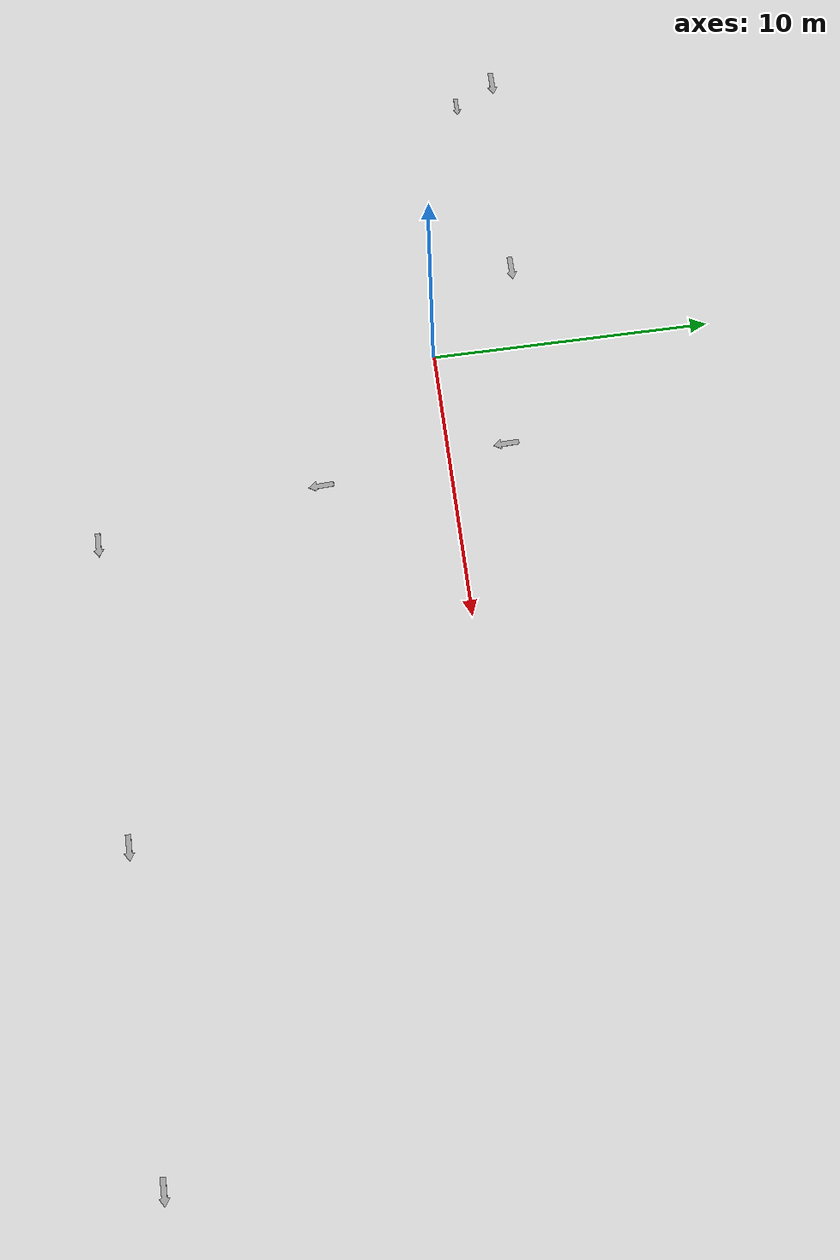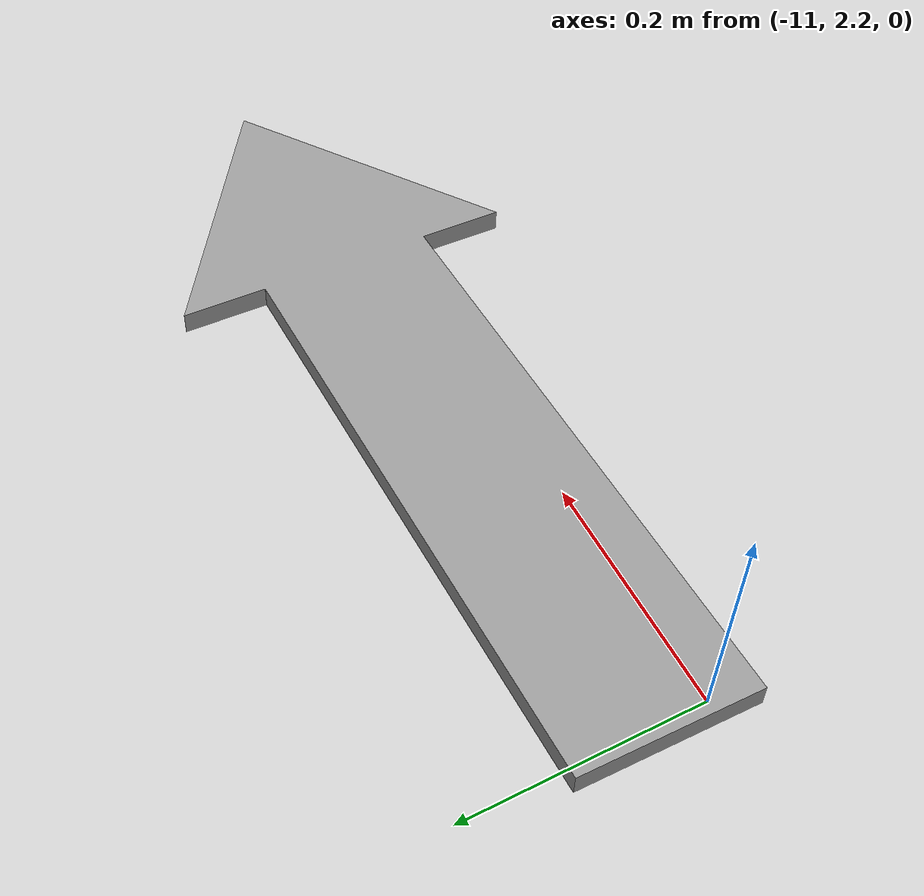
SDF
<sdf version="1.7">
 <world name="default">
  <light name="sun" type="directional">
   <pose>0 0 10 0 -0 0</pose>
   <diffuse>0.8 0.8 0.8 1</diffuse>
   <specular>0.2 0.2 0.2 1</specular>
   <attenuation>
    <range>1000</range>
    <constant>0.9</constant>
    <linear>0.01</linear>
    <quadratic>0.001</quadratic>
   </attenuation>
   <direction>-0.5 0.1 -0.9</direction>
   <spot><inner_angle>0</inner_angle><outer_angle>0</outer_angle><falloff>0</falloff></spot>
  </light>
  <model name="ground_plane">
   <static>1</static>
   <link name="link">
    <collision name="collision">
     <geometry><plane><normal>0 0 1</normal><size>100 100</size></plane></geometry>
     <surface>
      <contact><collide_bitmask>65535</collide_bitmask></contact>
      <friction><ode><mu>100</mu><mu2>50</mu2></ode></friction>
     </surface>
    </collision>
    <visual name="visual">
     <cast_shadows>0</cast_shadows>
     <geometry><plane><normal>0 0 1</normal><size>100 100</size></plane></geometry>
     <material>
      <script><uri>file://media/materials/scripts/gazebo.material</uri><name>Gazebo/Grey</name></script>
     </material>
    </visual>
   </link>
  </model>
  <gravity>0 0 -9.8</gravity>
  <magnetic_field>6e-06 2.3e-05 -4.2e-05</magnetic_field>
  <atmosphere type="adiabatic"/>
  <physics type="ode">
   <max_step_size>0.001</max_step_size>
   <real_time_factor>1</real_time_factor>
   <real_time_update_rate>1000</real_time_update_rate>
  </physics>
  <scene><ambient>0.4 0.4 0.4 1</ambient><background>0.7 0.7 0.7 1</background><shadows>1</shadows></scene>
  <spherical_coordinates>
   <surface_model>EARTH_WGS84</surface_model>
   <latitude_deg>0</latitude_deg>
   <longitude_deg>0</longitude_deg>
   <elevation>0</elevation>
   <heading_deg>0</heading_deg>
  </spherical_coordinates>
  <model name="arrow2">
   <link name="link_0">
    <inertial>
     <mass>0.0001</mass>
     <inertia><ixx>0</ixx><ixy>0</ixy><ixz>0</ixz><iyy>0</iyy><iyz>0</iyz><izz>0</izz></inertia>
    </inertial>
    <visual name="visual">
     <geometry>
      <mesh><uri>/home/alexii/robotics/onebot_ws/src/terrain/models/arrow3.stl</uri><scale>1 1 1</scale></mesh>
     </geometry>
     <material>
      <lighting>1</lighting>
      <script><uri>file://media/materials/scripts/gazebo.material</uri><name>Gazebo/Grey</name></script>
      <shader type="pixel"><normal_map>__default__</normal_map></shader>
      <ambient>0 0 0 1</ambient>
      <diffuse>0 0 0 1</diffuse>
      <specular>0 0 0 1</specular>
      <emissive>0 0 0 1</emissive>
     </material>
    </visual>
    <collision name="collision">
     <geometry>
      <mesh><uri>/home/alexii/robotics/onebot_ws/src/terrain/models/arrow3.stl</uri><scale>1 1 1</scale></mesh>
     </geometry>
     <surface>
      <friction>
       <ode><mu>1</mu><mu2>1</mu2><fdir1>0 0 0</fdir1><slip1>0</slip1><slip2>0</slip2></ode>
       <torsional>
        <coefficient>1</coefficient>
        <patch_radius>0</patch_radius>
        <surface_radius>0</surface_radius>
        <use_patch_radius>1</use_patch_radius>
        <ode><slip>0</slip></ode>
       </torsional>
      </friction>
      <bounce><restitution_coefficient>0</restitution_coefficient><threshold>1e+06</threshold></bounce>
      <contact>
       <collide_without_contact>0</collide_without_contact>
       <collide_without_contact_bitmask>1</collide_without_contact_bitmask>
       <collide_bitmask>1</collide_bitmask>
       <ode>
        <soft_cfm>0</soft_cfm>
        <soft_erp>0.2</soft_erp>
        <kp>1e+13</kp>
        <kd>1</kd>
        <max_vel>0.01</max_vel>
        <min_depth>0</min_depth>
       </ode>
       <bullet>
        <split_impulse>1</split_impulse>
        <split_impulse_penetration_threshold>-0.01</split_impulse_penetration_threshold>
        <soft_cfm>0</soft_cfm>
        <soft_erp>0.2</soft_erp>
        <kp>1e+13</kp>
        <kd>1</kd>
       </bullet>
      </contact>
     </surface>
    </collision>
   </link>
   <static>0</static>
   <pose>-2.79897 2.34544 11.7475 0.027074 0.082036 0.001038</pose>
  </model>
  <model name="arrow2_0">
   <link name="link_0">
    <inertial>
     <mass>0.0001</mass>
     <inertia><ixx>0</ixx><ixy>0</ixy><ixz>0</ixz><iyy>0</iyy><iyz>0</iyz><izz>0</izz></inertia>
    </inertial>
    <visual name="visual">
     <geometry>
      <mesh><uri>/home/alexii/robotics/onebot_ws/src/terrain/models/arrow3.stl</uri><scale>1 1 1</scale></mesh>
     </geometry>
     <material>
      <lighting>1</lighting>
      <script><uri>file://media/materials/scripts/gazebo.material</uri><name>Gazebo/Grey</name></script>
      <shader type="pixel"><normal_map>__default__</normal_map></shader>
      <ambient>0 0 0 1</ambient>
      <diffuse>0 0 0 1</diffuse>
      <specular>0 0 0 1</specular>
      <emissive>0 0 0 1</emissive>
     </material>
    </visual>
    <collision name="collision">
     <geometry>
      <mesh><uri>/home/alexii/robotics/onebot_ws/src/terrain/models/arrow3.stl</uri><scale>1 1 1</scale></mesh>
     </geometry>
     <surface>
      <friction>
       <ode><mu>1</mu><mu2>1</mu2><fdir1>0 0 0</fdir1><slip1>0</slip1><slip2>0</slip2></ode>
       <torsional>
        <coefficient>1</coefficient>
        <patch_radius>0</patch_radius>
        <surface_radius>0</surface_radius>
        <use_patch_radius>1</use_patch_radius>
        <ode><slip>0</slip></ode>
       </torsional>
      </friction>
      <bounce><restitution_coefficient>0</restitution_coefficient><threshold>1e+06</threshold></bounce>
      <contact>
       <collide_without_contact>0</collide_without_contact>
       <collide_without_contact_bitmask>1</collide_without_contact_bitmask>
       <collide_bitmask>1</collide_bitmask>
       <ode>
        <soft_cfm>0</soft_cfm>
        <soft_erp>0.2</soft_erp>
        <kp>1e+13</kp>
        <kd>1</kd>
        <max_vel>0.01</max_vel>
        <min_depth>0</min_depth>
       </ode>
       <bullet>
        <split_impulse>1</split_impulse>
        <split_impulse_penetration_threshold>-0.01</split_impulse_penetration_threshold>
        <soft_cfm>0</soft_cfm>
        <soft_erp>0.2</soft_erp>
        <kp>1e+13</kp>
        <kd>1</kd>
       </bullet>
      </contact>
     </surface>
    </collision>
   </link>
   <static>0</static>
   <pose>-10.6019 2.25668 0.034751 0.037189 0.055995 0.001521</pose>
  </model>
  <model name="arrow2_1">
   <link name="link_0">
    <inertial>
     <mass>0.0001</mass>
     <inertia><ixx>0</ixx><ixy>0</ixy><ixz>0</ixz><iyy>0</iyy><iyz>0</iyz><izz>0</izz></inertia>
    </inertial>
    <visual name="visual">
     <geometry>
      <mesh><uri>/home/alexii/robotics/onebot_ws/src/terrain/models/arrow3.stl</uri><scale>1 1 1</scale></mesh>
     </geometry>
     <material>
      <lighting>1</lighting>
      <script><uri>file://media/materials/scripts/gazebo.material</uri><name>Gazebo/Grey</name></script>
      <shader type="pixel"><normal_map>__default__</normal_map></shader>
      <ambient>0 0 0 1</ambient>
      <diffuse>0 0 0 1</diffuse>
      <specular>0 0 0 1</specular>
      <emissive>0 0 0 1</emissive>
     </material>
    </visual>
    <collision name="collision">
     <geometry>
      <mesh><uri>/home/alexii/robotics/onebot_ws/src/terrain/models/arrow3.stl</uri><scale>1 1 1</scale></mesh>
     </geometry>
     <surface>
      <friction>
       <ode><mu>1</mu><mu2>1</mu2><fdir1>0 0 0</fdir1><slip1>0</slip1><slip2>0</slip2></ode>
       <torsional>
        <coefficient>1</coefficient>
        <patch_radius>0</patch_radius>
        <surface_radius>0</surface_radius>
        <use_patch_radius>1</use_patch_radius>
        <ode><slip>0</slip></ode>
       </torsional>
      </friction>
      <bounce><restitution_coefficient>0</restitution_coefficient><threshold>1e+06</threshold></bounce>
      <contact>
       <collide_without_contact>0</collide_without_contact>
       <collide_without_contact_bitmask>1</collide_without_contact_bitmask>
       <collide_bitmask>1</collide_bitmask>
       <ode>
        <soft_cfm>0</soft_cfm>
        <soft_erp>0.2</soft_erp>
        <kp>1e+13</kp>
        <kd>1</kd>
        <max_vel>0.01</max_vel>
        <min_depth>0</min_depth>
       </ode>
       <bullet>
        <split_impulse>1</split_impulse>
        <split_impulse_penetration_threshold>-0.01</split_impulse_penetration_threshold>
        <soft_cfm>0</soft_cfm>
        <soft_erp>0.2</soft_erp>
        <kp>1e+13</kp>
        <kd>1</kd>
       </bullet>
      </contact>
     </surface>
    </collision>
   </link>
   <static>0</static>
   <pose>3.52403 2.01003 11.4838 0.021309 0.040603 0.000807</pose>
  </model>
  <model name="arrow2_2">
   <link name="link_0">
    <inertial>
     <mass>0.0001</mass>
     <inertia><ixx>0</ixx><ixy>0</ixy><ixz>0</ixz><iyy>0</iyy><iyz>0</iyz><izz>0</izz></inertia>
    </inertial>
    <visual name="visual">
     <geometry>
      <mesh><uri>/home/alexii/robotics/onebot_ws/src/terrain/models/arrow3.stl</uri><scale>1 1 1</scale></mesh>
     </geometry>
     <material>
      <lighting>1</lighting>
      <script><uri>file://media/materials/scripts/gazebo.material</uri><name>Gazebo/Grey</name></script>
      <shader type="pixel"><normal_map>__default__</normal_map></shader>
      <ambient>0 0 0 1</ambient>
      <diffuse>0 0 0 1</diffuse>
      <specular>0 0 0 1</specular>
      <emissive>0 0 0 1</emissive>
     </material>
    </visual>
    <collision name="collision">
     <geometry>
      <mesh><uri>/home/alexii/robotics/onebot_ws/src/terrain/models/arrow3.stl</uri><scale>1 1 1</scale></mesh>
     </geometry>
     <surface>
      <friction>
       <ode><mu>1</mu><mu2>1</mu2><fdir1>0 0 0</fdir1><slip1>0</slip1><slip2>0</slip2></ode>
       <torsional>
        <coefficient>1</coefficient>
        <patch_radius>0</patch_radius>
        <surface_radius>0</surface_radius>
        <use_patch_radius>1</use_patch_radius>
        <ode><slip>0</slip></ode>
       </torsional>
      </friction>
      <bounce><restitution_coefficient>0</restitution_coefficient><threshold>1e+06</threshold></bounce>
      <contact>
       <collide_without_contact>0</collide_without_contact>
       <collide_without_contact_bitmask>1</collide_without_contact_bitmask>
       <collide_bitmask>1</collide_bitmask>
       <ode>
        <soft_cfm>0</soft_cfm>
        <soft_erp>0.2</soft_erp>
        <kp>1e+13</kp>
        <kd>1</kd>
        <max_vel>0.01</max_vel>
        <min_depth>0</min_depth>
       </ode>
       <bullet>
        <split_impulse>1</split_impulse>
        <split_impulse_penetration_threshold>-0.01</split_impulse_penetration_threshold>
        <soft_cfm>0</soft_cfm>
        <soft_erp>0.2</soft_erp>
        <kp>1e+13</kp>
        <kd>1</kd>
       </bullet>
      </contact>
     </surface>
    </collision>
   </link>
   <static>0</static>
   <pose>18.4538 -10.5066 9.10167 0.009078 0.090356 0.001345</pose>
  </model>
  <model name="arrow2_3">
   <link name="link_0">
    <inertial>
     <mass>0.0001</mass>
     <inertia><ixx>0</ixx><ixy>0</ixy><ixz>0</ixz><iyy>0</iyy><iyz>0</iyz><izz>0</izz></inertia>
    </inertial>
    <visual name="visual">
     <geometry>
      <mesh><uri>/home/alexii/robotics/onebot_ws/src/terrain/models/arrow3.stl</uri><scale>1 1 1</scale></mesh>
     </geometry>
     <material>
      <lighting>1</lighting>
      <script><uri>file://media/materials/scripts/gazebo.material</uri><name>Gazebo/Grey</name></script>
      <shader type="pixel"><normal_map>__default__</normal_map></shader>
      <ambient>0 0 0 1</ambient>
      <diffuse>0 0 0 1</diffuse>
      <specular>0 0 0 1</specular>
      <emissive>0 0 0 1</emissive>
     </material>
    </visual>
    <collision name="collision">
     <geometry>
      <mesh><uri>/home/alexii/robotics/onebot_ws/src/terrain/models/arrow3.stl</uri><scale>1 1 1</scale></mesh>
     </geometry>
     <surface>
      <friction>
       <ode><mu>1</mu><mu2>1</mu2><fdir1>0 0 0</fdir1><slip1>0</slip1><slip2>0</slip2></ode>
       <torsional>
        <coefficient>1</coefficient>
        <patch_radius>0</patch_radius>
        <surface_radius>0</surface_radius>
        <use_patch_radius>1</use_patch_radius>
        <ode><slip>0</slip></ode>
       </torsional>
      </friction>
      <bounce><restitution_coefficient>0</restitution_coefficient><threshold>1e+06</threshold></bounce>
      <contact>
       <collide_without_contact>0</collide_without_contact>
       <collide_without_contact_bitmask>1</collide_without_contact_bitmask>
       <collide_bitmask>1</collide_bitmask>
       <ode>
        <soft_cfm>0</soft_cfm>
        <soft_erp>0.2</soft_erp>
        <kp>1e+13</kp>
        <kd>1</kd>
        <max_vel>0.01</max_vel>
        <min_depth>0</min_depth>
       </ode>
       <bullet>
        <split_impulse>1</split_impulse>
        <split_impulse_penetration_threshold>-0.01</split_impulse_penetration_threshold>
        <soft_cfm>0</soft_cfm>
        <soft_erp>0.2</soft_erp>
        <kp>1e+13</kp>
        <kd>1</kd>
       </bullet>
      </contact>
     </surface>
    </collision>
   </link>
   <static>0</static>
   <pose>8.79166 1.02452 10.974 -0.063493 0.066211 -1.56411</pose>
  </model>
  <model name="arrow2_4">
   <link name="link_0">
    <inertial>
     <mass>0.0001</mass>
     <inertia><ixx>0</ixx><ixy>0</ixy><ixz>0</ixz><iyy>0</iyy><iyz>0</iyz><izz>0</izz></inertia>
    </inertial>
    <visual name="visual">
     <geometry>
      <mesh><uri>/home/alexii/robotics/onebot_ws/src/terrain/models/arrow3.stl</uri><scale>1 1 1</scale></mesh>
     </geometry>
     <material>
      <lighting>1</lighting>
      <script><uri>file://media/materials/scripts/gazebo.material</uri><name>Gazebo/Grey</name></script>
      <shader type="pixel"><normal_map>__default__</normal_map></shader>
      <ambient>0 0 0 1</ambient>
      <diffuse>0 0 0 1</diffuse>
      <specular>0 0 0 1</specular>
      <emissive>0 0 0 1</emissive>
     </material>
    </visual>
    <collision name="collision">
     <geometry>
      <mesh><uri>/home/alexii/robotics/onebot_ws/src/terrain/models/arrow3.stl</uri><scale>1 1 1</scale></mesh>
     </geometry>
     <surface>
      <friction>
       <ode><mu>1</mu><mu2>1</mu2><fdir1>0 0 0</fdir1><slip1>0</slip1><slip2>0</slip2></ode>
       <torsional>
        <coefficient>1</coefficient>
        <patch_radius>0</patch_radius>
        <surface_radius>0</surface_radius>
        <use_patch_radius>1</use_patch_radius>
        <ode><slip>0</slip></ode>
       </torsional>
      </friction>
      <bounce><restitution_coefficient>0</restitution_coefficient><threshold>1e+06</threshold></bounce>
      <contact>
       <collide_without_contact>0</collide_without_contact>
       <collide_without_contact_bitmask>1</collide_without_contact_bitmask>
       <collide_bitmask>1</collide_bitmask>
       <ode>
        <soft_cfm>0</soft_cfm>
        <soft_erp>0.2</soft_erp>
        <kp>1e+13</kp>
        <kd>1</kd>
        <max_vel>0.01</max_vel>
        <min_depth>0</min_depth>
       </ode>
       <bullet>
        <split_impulse>1</split_impulse>
        <split_impulse_penetration_threshold>-0.01</split_impulse_penetration_threshold>
        <soft_cfm>0</soft_cfm>
        <soft_erp>0.2</soft_erp>
        <kp>1e+13</kp>
        <kd>1</kd>
       </bullet>
      </contact>
     </surface>
    </collision>
   </link>
   <static>0</static>
   <pose>27.1743 -10.2115 8.91145 0.024212 0.097399 0.001454</pose>
  </model>
  <model name="arrow2_5">
   <link name="link_0">
    <inertial>
     <mass>0.0001</mass>
     <inertia><ixx>0</ixx><ixy>0</ixy><ixz>0</ixz><iyy>0</iyy><iyz>0</iyz><izz>0</izz></inertia>
    </inertial>
    <visual name="visual">
     <geometry>
      <mesh><uri>/home/alexii/robotics/onebot_ws/src/terrain/models/arrow3.stl</uri><scale>1 1 1</scale></mesh>
     </geometry>
     <material>
      <lighting>1</lighting>
      <script><uri>file://media/materials/scripts/gazebo.material</uri><name>Gazebo/Grey</name></script>
      <shader type="pixel"><normal_map>__default__</normal_map></shader>
      <ambient>0 0 0 1</ambient>
      <diffuse>0 0 0 1</diffuse>
      <specular>0 0 0 1</specular>
      <emissive>0 0 0 1</emissive>
     </material>
    </visual>
    <collision name="collision">
     <geometry>
      <mesh><uri>/home/alexii/robotics/onebot_ws/src/terrain/models/arrow3.stl</uri><scale>1 1 1</scale></mesh>
     </geometry>
     <surface>
      <friction>
       <ode><mu>1</mu><mu2>1</mu2><fdir1>0 0 0</fdir1><slip1>0</slip1><slip2>0</slip2></ode>
       <torsional>
        <coefficient>1</coefficient>
        <patch_radius>0</patch_radius>
        <surface_radius>0</surface_radius>
        <use_patch_radius>1</use_patch_radius>
        <ode><slip>0</slip></ode>
       </torsional>
      </friction>
      <bounce><restitution_coefficient>0</restitution_coefficient><threshold>1e+06</threshold></bounce>
      <contact>
       <collide_without_contact>0</collide_without_contact>
       <collide_without_contact_bitmask>1</collide_without_contact_bitmask>
       <collide_bitmask>1</collide_bitmask>
       <ode>
        <soft_cfm>0</soft_cfm>
        <soft_erp>0.2</soft_erp>
        <kp>1e+13</kp>
        <kd>1</kd>
        <max_vel>0.01</max_vel>
        <min_depth>0</min_depth>
       </ode>
       <bullet>
        <split_impulse>1</split_impulse>
        <split_impulse_penetration_threshold>-0.01</split_impulse_penetration_threshold>
        <soft_cfm>0</soft_cfm>
        <soft_erp>0.2</soft_erp>
        <kp>1e+13</kp>
        <kd>1</kd>
       </bullet>
      </contact>
     </surface>
    </collision>
   </link>
   <static>0</static>
   <pose>9.05981 -4.31526 10.2673 -0.019538 0.051934 -1.54578</pose>
  </model>
  <model name="arrow2_6">
   <link name="link_0">
    <inertial>
     <mass>0.0001</mass>
     <inertia><ixx>0</ixx><ixy>0</ixy><ixz>0</ixz><iyy>0</iyy><iyz>0</iyz><izz>0</izz></inertia>
    </inertial>
    <visual name="visual">
     <geometry>
      <mesh><uri>/home/alexii/robotics/onebot_ws/src/terrain/models/arrow3.stl</uri><scale>1 1 1</scale></mesh>
     </geometry>
     <material>
      <lighting>1</lighting>
      <script><uri>file://media/materials/scripts/gazebo.material</uri><name>Gazebo/Grey</name></script>
      <shader type="pixel"><normal_map>__default__</normal_map></shader>
      <ambient>0 0 0 1</ambient>
      <diffuse>0 0 0 1</diffuse>
      <specular>0 0 0 1</specular>
      <emissive>0 0 0 1</emissive>
     </material>
    </visual>
    <collision name="collision">
     <geometry>
      <mesh><uri>/home/alexii/robotics/onebot_ws/src/terrain/models/arrow3.stl</uri><scale>1 1 1</scale></mesh>
     </geometry>
     <surface>
      <friction>
       <ode><mu>1</mu><mu2>1</mu2><fdir1>0 0 0</fdir1><slip1>0</slip1><slip2>0</slip2></ode>
       <torsional>
        <coefficient>1</coefficient>
        <patch_radius>0</patch_radius>
        <surface_radius>0</surface_radius>
        <use_patch_radius>1</use_patch_radius>
        <ode><slip>0</slip></ode>
       </torsional>
      </friction>
      <bounce><restitution_coefficient>0</restitution_coefficient><threshold>1e+06</threshold></bounce>
      <contact>
       <collide_without_contact>0</collide_without_contact>
       <collide_without_contact_bitmask>1</collide_without_contact_bitmask>
       <collide_bitmask>1</collide_bitmask>
       <ode>
        <soft_cfm>0</soft_cfm>
        <soft_erp>0.2</soft_erp>
        <kp>1e+13</kp>
        <kd>1</kd>
        <max_vel>0.01</max_vel>
        <min_depth>0</min_depth>
       </ode>
       <bullet>
        <split_impulse>1</split_impulse>
        <split_impulse_penetration_threshold>-0.01</split_impulse_penetration_threshold>
        <soft_cfm>0</soft_cfm>
        <soft_erp>0.2</soft_erp>
        <kp>1e+13</kp>
        <kd>1</kd>
       </bullet>
      </contact>
     </surface>
    </collision>
   </link>
   <static>0</static>
   <pose>9.67652 -10.7994 9.29316 0.013901 0.058459 0.000423</pose>
  </model>
 </world>
</sdf>
